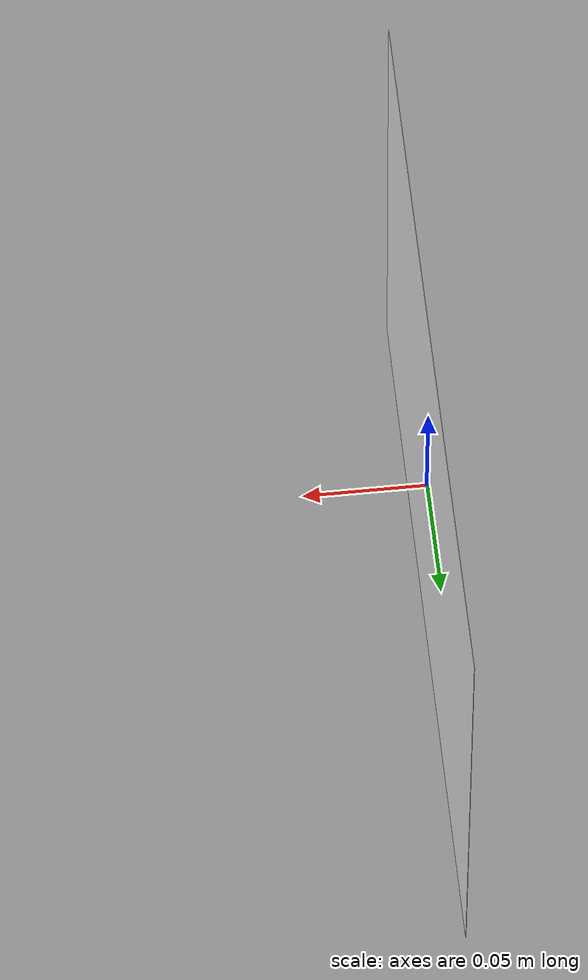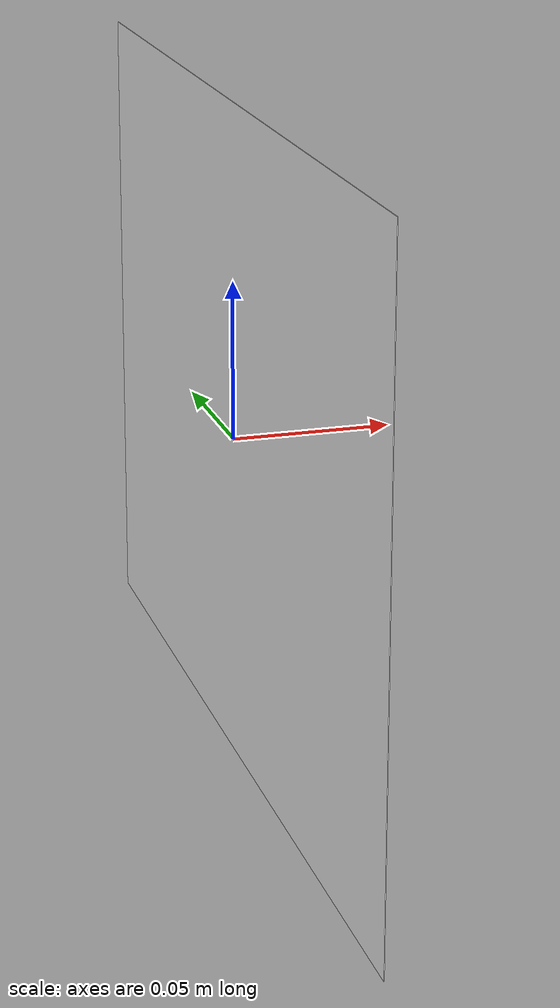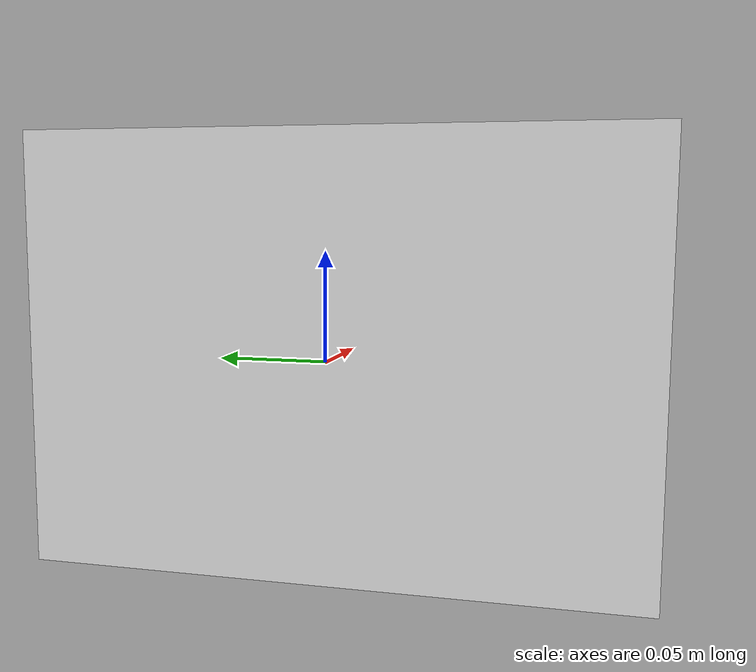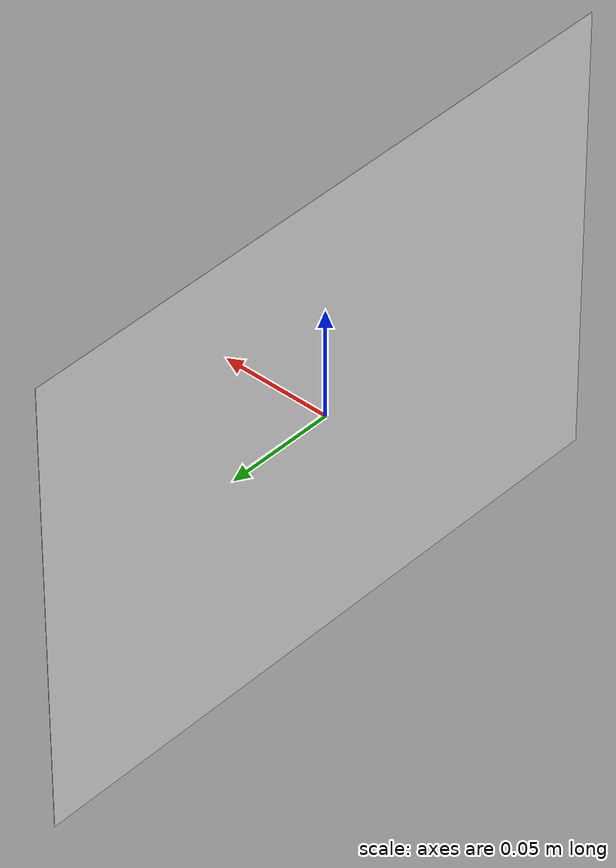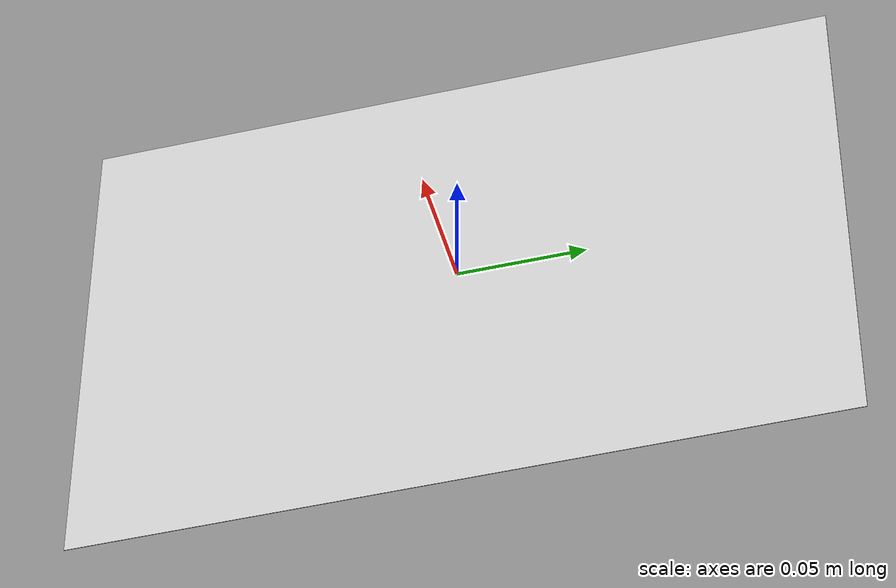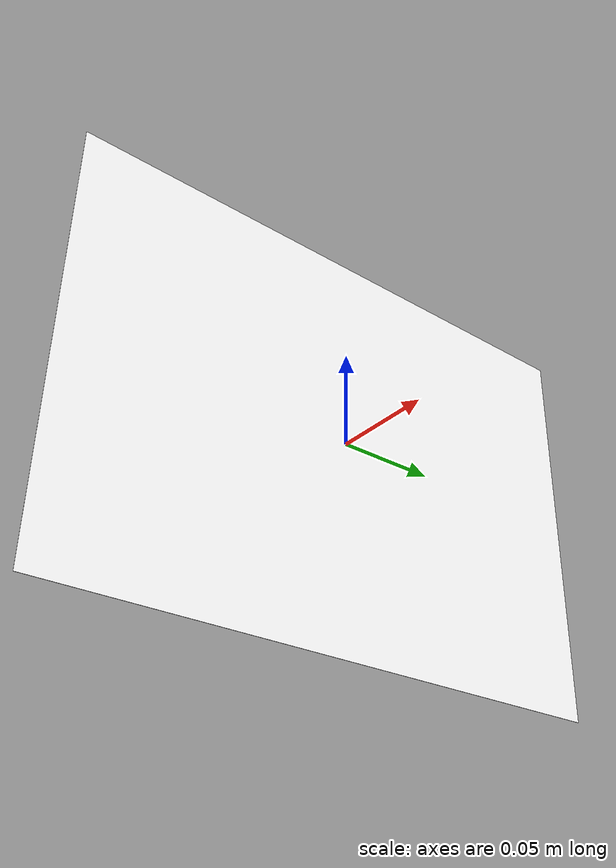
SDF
<?xml version='1.0'?>
<sdf version='1.6'>
  <model name='charucoboard'>
    <static>1</static>

    <link name='charucoboard_link'>
      <visual name="page_visual">
        <cast_shadows>false</cast_shadows>
        <pose>0 0 0    0 0 0</pose>
        <geometry>
          <plane>
            <normal>1 0 0</normal>
            <size>0.210 0.297</size>
          </plane>
        </geometry>
            <material>
                <script>
                    <uri>file://media/materials/scripts/gazebo.material</uri>
                    <name>Gazebo/White</name>
                </script>
            </material>
      </visual>

      <visual name="picture_visual">
        <cast_shadows>false</cast_shadows>
        <pose>0 0 0.002    0 0 0</pose>
        <geometry>
          <plane>
            <normal>1 0 0</normal>
            <size>0.175 0.210</size>
          </plane>
        </geometry>
        <material>
          <script>
            <uri>model://rs_gazebo/models/ss_hq4/charucoboard/materials/scripts</uri>
            <uri>model://rs_gazebo/models/ss_hq4/charucoboard/materials/textures</uri>
            <name>charucoboard</name>
          </script>
        </material>
      </visual>

    </link>
    <allow_auto_disable>1</allow_auto_disable>
  </model>
</sdf>
